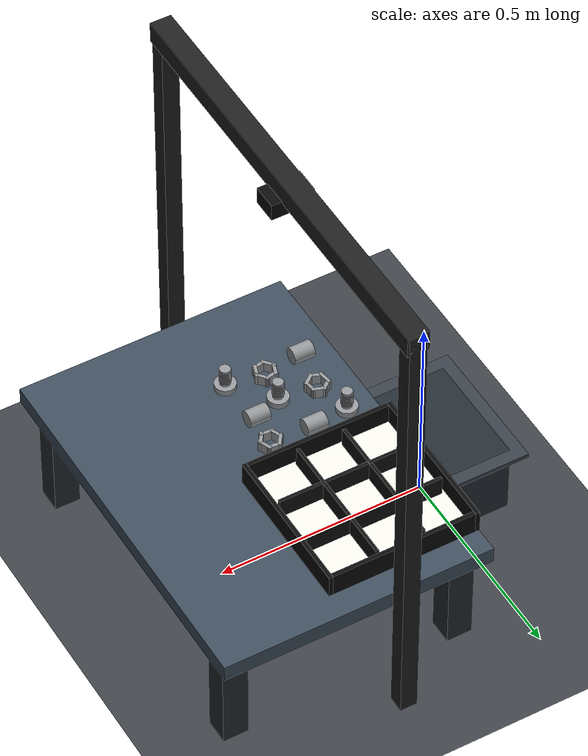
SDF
<?xml version="1.0"?>
<sdf version="1.8">
  <world name="empty">
    <physics name="2ms" type="ignored">
      <max_step_size>0.002</max_step_size>
      <real_time_factor>1.0</real_time_factor>
      <dart>
        <solver>
          <solver_type>pgs</solver_type>
        </solver>
        <collision_detector>ode</collision_detector>
      </dart>
    </physics>
    <plugin filename="ignition-gazebo-physics-system" name="gz::sim::systems::Physics"/>
    <plugin filename="ignition-gazebo-user-commands-system" name="gz::sim::systems::UserCommands"/>
    <plugin filename="ignition-gazebo-scene-broadcaster-system" name="gz::sim::systems::SceneBroadcaster"/>
    <plugin filename="ignition-gazebo-contact-system" name="gz::sim::systems::Contact"/>
    <plugin filename="ignition-gazebo-sensors-system" name="gz::sim::systems::Sensors">
      <render_engine>ogre</render_engine>
    </plugin>
    <scene>
      <ambient>0.42 0.42 0.42 1</ambient>
      <background>0.08 0.10 0.12 1</background>
      <shadows>false</shadows>
    </scene>
    <light type="directional" name="sun">
      <cast_shadows>true</cast_shadows>
      <pose>0 0 10 0 0 0</pose>
      <diffuse>0.75 0.75 0.75 1</diffuse>
      <specular>0.20 0.20 0.20 1</specular>
      <direction>-0.4 0.2 -0.9</direction>
    </light>
    <light type="point" name="work_light">
      <pose>0.45 0 1.31 0 0 0</pose>
      <cast_shadows>true</cast_shadows>
      <diffuse>0.85 0.85 0.82 1</diffuse>
      <specular>0.45 0.45 0.45 1</specular>
      <attenuation>
        <range>4.0</range>
        <constant>0.5</constant>
        <linear>0.1</linear>
        <quadratic>0.02</quadratic>
      </attenuation>
    </light>
    <model name="ground_plane">
      <static>true</static>
      <link name="link">
        <collision name="collision">
          <geometry>
            <plane>
              <normal>0 0 1</normal>
              <size>6 6</size>
            </plane>
          </geometry>
        </collision>
        <visual name="visual">
          <geometry>
            <plane>
              <normal>0 0 1</normal>
              <size>6 6</size>
            </plane>
          </geometry>
          <material>
            <ambient>0.20 0.22 0.24 1</ambient>
            <diffuse>0.24 0.26 0.28 1</diffuse>
          </material>
        </visual>
      </link>
    </model>
    <!-- Robot, workbench, and RGB-D rig deliberately match industrial_pgs.sdf. -->
    <include>
      <uri>model://sensoragent_robot_base_frame</uri>
      <pose>0 0 0 0 0 0</pose>
    </include>
    <model name="sorting_workbench">
      <static>true</static><pose>0.42 0 0 0 0 0</pose><link name="workbench">
        <collision name="top_collision"><pose>0 0 0.28 0 0 0</pose><geometry><box><size>0.65 0.90 0.04</size></box></geometry><surface><friction><ode><mu>20</mu><mu2>20</mu2></ode></friction></surface></collision>
        <visual name="top_visual"><pose>0 0 0.28 0 0 0</pose><geometry><box><size>0.65 0.90 0.04</size></box></geometry><material><ambient>0.18 0.22 0.26 1</ambient><diffuse>0.24 0.30 0.36 1</diffuse><specular>0.35 0.35 0.35 1</specular></material></visual>
        <collision name="leg_1"><pose>-0.275 -0.375 0.13 0 0 0</pose><geometry><box><size>0.06 0.06 0.26</size></box></geometry></collision>
        <collision name="leg_2"><pose>-0.275 0.375 0.13 0 0 0</pose><geometry><box><size>0.06 0.06 0.26</size></box></geometry></collision>
        <collision name="leg_3"><pose>0.275 -0.375 0.13 0 0 0</pose><geometry><box><size>0.06 0.06 0.26</size></box></geometry></collision>
        <collision name="leg_4"><pose>0.275 0.375 0.13 0 0 0</pose><geometry><box><size>0.06 0.06 0.26</size></box></geometry></collision>
        <visual name="leg_1"><pose>-0.275 -0.375 0.13 0 0 0</pose><geometry><box><size>0.06 0.06 0.26</size></box></geometry><material><diffuse>0.14 0.16 0.18 1</diffuse></material></visual>
        <visual name="leg_2"><pose>-0.275 0.375 0.13 0 0 0</pose><geometry><box><size>0.06 0.06 0.26</size></box></geometry><material><diffuse>0.14 0.16 0.18 1</diffuse></material></visual>
        <visual name="leg_3"><pose>0.275 -0.375 0.13 0 0 0</pose><geometry><box><size>0.06 0.06 0.26</size></box></geometry><material><diffuse>0.14 0.16 0.18 1</diffuse></material></visual>
        <visual name="leg_4"><pose>0.275 0.375 0.13 0 0 0</pose><geometry><box><size>0.06 0.06 0.26</size></box></geometry><material><diffuse>0.14 0.16 0.18 1</diffuse></material></visual>
      </link>
    </model>
    <include>
      <uri>model://sensoragent_rgbd_rig</uri>
    </include>
    <!-- A 3x3 destination tray with 105 mm clear cells for the Robotiq gripper. -->
    <model name="sorting_bin_3x3">
      <static>true</static>
      <pose>0.28 0.21 0.30 0 0 0</pose>
      <link name="bin">
        <collision name="bottom">
          <pose>0 0 0.005 0 0 0</pose>
          <geometry>
            <box>
              <size>0.351 0.351 0.01</size>
            </box>
          </geometry>
        </collision>
        <visual name="bottom">
          <pose>0 0 0.005 0 0 0</pose>
          <geometry>
            <box>
              <size>0.351 0.351 0.01</size>
            </box>
          </geometry>
          <material>
            <ambient>0.80 0.80 0.78 1</ambient>
            <diffuse>0.94 0.94 0.91 1</diffuse>
            <specular>0.10 0.10 0.10 1</specular>
          </material>
        </visual>
        <collision name="wall_x_pos">
          <pose>0.1705 0 0.0325 0 0 0</pose>
          <geometry>
            <box>
              <size>0.01 0.351 0.055</size>
            </box>
          </geometry>
        </collision>
        <collision name="wall_x_neg">
          <pose>-0.1705 0 0.0325 0 0 0</pose>
          <geometry>
            <box>
              <size>0.01 0.351 0.055</size>
            </box>
          </geometry>
        </collision>
        <collision name="wall_y_pos">
          <pose>0 0.1705 0.0325 0 0 0</pose>
          <geometry>
            <box>
              <size>0.331 0.01 0.055</size>
            </box>
          </geometry>
        </collision>
        <collision name="wall_y_neg">
          <pose>0 -0.1705 0.0325 0 0 0</pose>
          <geometry>
            <box>
              <size>0.331 0.01 0.055</size>
            </box>
          </geometry>
        </collision>
        <visual name="wall_x_pos">
          <pose>0.178 0 0.0325 0 0 0</pose>
          <geometry>
            <box>
              <size>0.01 0.366 0.055</size>
            </box>
          </geometry>
          <material>
            <diffuse>0.04 0.04 0.04 1</diffuse>
            <specular>0.20 0.20 0.20 1</specular>
          </material>
        </visual>
        <visual name="wall_x_neg">
          <pose>-0.178 0 0.0325 0 0 0</pose>
          <geometry>
            <box>
              <size>0.01 0.366 0.055</size>
            </box>
          </geometry>
          <material>
            <diffuse>0.04 0.04 0.04 1</diffuse>
            <specular>0.20 0.20 0.20 1</specular>
          </material>
        </visual>
        <visual name="wall_y_pos">
          <pose>0 0.178 0.0325 0 0 0</pose>
          <geometry>
            <box>
              <size>0.346 0.01 0.055</size>
            </box>
          </geometry>
          <material>
            <diffuse>0.04 0.04 0.04 1</diffuse>
            <specular>0.20 0.20 0.20 1</specular>
          </material>
        </visual>
        <visual name="wall_y_neg">
          <pose>0 -0.178 0.0325 0 0 0</pose>
          <geometry>
            <box>
              <size>0.346 0.01 0.055</size>
            </box>
          </geometry>
          <material>
            <diffuse>0.04 0.04 0.04 1</diffuse>
            <specular>0.20 0.20 0.20 1</specular>
          </material>
        </visual>
        <collision name="divider_x_left">
          <pose>-0.0565 0 0.0325 0 0 0</pose>
          <geometry>
            <box>
              <size>0.008 0.331 0.050</size>
            </box>
          </geometry>
        </collision>
        <collision name="divider_x_right">
          <pose>0.0565 0 0.0325 0 0 0</pose>
          <geometry>
            <box>
              <size>0.008 0.331 0.050</size>
            </box>
          </geometry>
        </collision>
        <collision name="divider_y_front">
          <pose>0 -0.0565 0.0325 0 0 0</pose>
          <geometry>
            <box>
              <size>0.331 0.008 0.050</size>
            </box>
          </geometry>
        </collision>
        <collision name="divider_y_back">
          <pose>0 0.0565 0.0325 0 0 0</pose>
          <geometry>
            <box>
              <size>0.331 0.008 0.050</size>
            </box>
          </geometry>
        </collision>
        <visual name="divider_x_left">
          <pose>-0.0565 0 0.0325 0 0 0</pose>
          <geometry>
            <box>
              <size>0.008 0.331 0.050</size>
            </box>
          </geometry>
          <material>
            <diffuse>0.06 0.06 0.06 1</diffuse>
          </material>
        </visual>
        <visual name="divider_x_right">
          <pose>0.0565 0 0.0325 0 0 0</pose>
          <geometry>
            <box>
              <size>0.008 0.331 0.050</size>
            </box>
          </geometry>
          <material>
            <diffuse>0.06 0.06 0.06 1</diffuse>
          </material>
        </visual>
        <visual name="divider_y_front">
          <pose>0 -0.0565 0.0325 0 0 0</pose>
          <geometry>
            <box>
              <size>0.331 0.008 0.050</size>
            </box>
          </geometry>
          <material>
            <diffuse>0.06 0.06 0.06 1</diffuse>
          </material>
        </visual>
        <visual name="divider_y_back">
          <pose>0 0.0565 0.0325 0 0 0</pose>
          <geometry>
            <box>
              <size>0.331 0.008 0.050</size>
            </box>
          </geometry>
          <material>
            <diffuse>0.06 0.06 0.06 1</diffuse>
          </material>
        </visual>
      </link>
    </model>
    <model name="metal_roller_01">
      <pose>0.1725 -0.225 0.320 0 1.570796 0</pose>
      <link name="part">
        <inertial>
          <mass>0.20</mass>
          <inertia>
            <ixx>0.0001017</ixx>
            <iyy>0.0001017</iyy>
            <izz>0.0000400</izz>
          </inertia>
        </inertial>
        <collision name="collision">
          <geometry>
            <cylinder>
              <radius>0.020</radius>
              <length>0.050</length>
            </cylinder>
          </geometry>
          <surface>
            <friction>
              <ode>
                <mu>8</mu>
                <mu2>8</mu2>
              </ode>
            </friction>
          </surface>
        </collision>
        <visual name="visual">
          <geometry>
            <cylinder>
              <radius>0.020</radius>
              <length>0.050</length>
            </cylinder>
          </geometry>
          <material>
            <ambient>0.42 0.43 0.44 1</ambient>
            <diffuse>0.58 0.59 0.60 1</diffuse>
            <specular>0.35 0.35 0.35 1</specular>
          </material>
        </visual>
      </link>
    </model>
    <model name="metal_hex_nut_01">
      <pose>0.2675 -0.215 0.3125 0 0 -0.350000</pose>
      <link name="part">
        <inertial>
          <mass>0.18</mass>
          <inertia>
            <ixx>0.0000564</ixx>
            <iyy>0.0000564</iyy>
            <izz>0.0000940</izz>
          </inertia>
        </inertial>
        <collision name="side_0"><pose>0.0205 0 0 0 0 1.570796</pose><geometry><box><size>0.034 0.008 0.025</size></box></geometry></collision>
        <collision name="side_1"><pose>0.01025 0.01775 0 0 0 2.617994</pose><geometry><box><size>0.034 0.008 0.025</size></box></geometry></collision>
        <collision name="side_2"><pose>-0.01025 0.01775 0 0 0 3.665191</pose><geometry><box><size>0.034 0.008 0.025</size></box></geometry></collision>
        <collision name="side_3"><pose>-0.0205 0 0 0 0 4.712389</pose><geometry><box><size>0.034 0.008 0.025</size></box></geometry></collision>
        <collision name="side_4"><pose>-0.01025 -0.01775 0 0 0 5.759587</pose><geometry><box><size>0.034 0.008 0.025</size></box></geometry></collision>
        <collision name="side_5"><pose>0.01025 -0.01775 0 0 0 0.523599</pose><geometry><box><size>0.034 0.008 0.025</size></box></geometry></collision>
        <visual name="side_0"><pose>0.0205 0 0 0 0 1.570796</pose><geometry><box><size>0.034 0.008 0.025</size></box></geometry><material><ambient>0.42 0.43 0.44 1</ambient><diffuse>0.58 0.59 0.60 1</diffuse><specular>0.35 0.35 0.35 1</specular></material></visual>
        <visual name="side_1"><pose>0.01025 0.01775 0 0 0 2.617994</pose><geometry><box><size>0.034 0.008 0.025</size></box></geometry><material><ambient>0.42 0.43 0.44 1</ambient><diffuse>0.58 0.59 0.60 1</diffuse><specular>0.35 0.35 0.35 1</specular></material></visual>
        <visual name="side_2"><pose>-0.01025 0.01775 0 0 0 3.665191</pose><geometry><box><size>0.034 0.008 0.025</size></box></geometry><material><ambient>0.42 0.43 0.44 1</ambient><diffuse>0.58 0.59 0.60 1</diffuse><specular>0.35 0.35 0.35 1</specular></material></visual>
        <visual name="side_3"><pose>-0.0205 0 0 0 0 4.712389</pose><geometry><box><size>0.034 0.008 0.025</size></box></geometry><material><ambient>0.42 0.43 0.44 1</ambient><diffuse>0.58 0.59 0.60 1</diffuse><specular>0.35 0.35 0.35 1</specular></material></visual>
        <visual name="side_4"><pose>-0.01025 -0.01775 0 0 0 5.759587</pose><geometry><box><size>0.034 0.008 0.025</size></box></geometry><material><ambient>0.42 0.43 0.44 1</ambient><diffuse>0.58 0.59 0.60 1</diffuse><specular>0.35 0.35 0.35 1</specular></material></visual>
        <visual name="side_5"><pose>0.01025 -0.01775 0 0 0 0.523599</pose><geometry><box><size>0.034 0.008 0.025</size></box></geometry><material><ambient>0.42 0.43 0.44 1</ambient><diffuse>0.58 0.59 0.60 1</diffuse><specular>0.35 0.35 0.35 1</specular></material></visual>
      </link>
    </model>
    <model name="metal_short_bolt_01">
      <pose>0.3575 -0.232 0.3325 3.141593 0 -0.250000</pose>
      <link name="part">
        <inertial>
          <mass>0.20</mass>
          <inertia>
            <ixx>0.0001162</ixx>
            <iyy>0.0001162</iyy>
            <izz>0.0000625</izz>
          </inertia>
        </inertial>
        <collision name="shaft">
          <pose>0 0 -0.005 0 0 0</pose>
          <geometry>
            <cylinder>
              <radius>0.0125</radius>
              <length>0.045</length>
            </cylinder>
          </geometry>
        </collision>
        <collision name="head">
          <pose>0 0 0.025 0 0 0</pose>
          <geometry>
            <cylinder>
              <radius>0.025</radius>
              <length>0.015</length>
            </cylinder>
          </geometry>
        </collision>
        <visual name="shaft">
          <pose>0 0 -0.005 0 0 0</pose>
          <geometry>
            <cylinder>
              <radius>0.0125</radius>
              <length>0.045</length>
            </cylinder>
          </geometry>
          <material>
            <ambient>0.42 0.43 0.44 1</ambient>
            <diffuse>0.58 0.59 0.60 1</diffuse>
            <specular>0.35 0.35 0.35 1</specular>
          </material>
        </visual>
        <visual name="thread_0"><pose>0 0 -0.022 0 0 0</pose><geometry><cylinder><radius>0.014</radius><length>0.002</length></cylinder></geometry><material><diffuse>0.58 0.59 0.60 1</diffuse></material></visual>
        <visual name="thread_1"><pose>0 0 -0.017 0 0 0</pose><geometry><cylinder><radius>0.014</radius><length>0.002</length></cylinder></geometry><material><diffuse>0.58 0.59 0.60 1</diffuse></material></visual>
        <visual name="thread_2"><pose>0 0 -0.012 0 0 0</pose><geometry><cylinder><radius>0.014</radius><length>0.002</length></cylinder></geometry><material><diffuse>0.58 0.59 0.60 1</diffuse></material></visual>
        <visual name="thread_3"><pose>0 0 -0.007 0 0 0</pose><geometry><cylinder><radius>0.014</radius><length>0.002</length></cylinder></geometry><material><diffuse>0.58 0.59 0.60 1</diffuse></material></visual>
        <visual name="thread_4"><pose>0 0 -0.002 0 0 0</pose><geometry><cylinder><radius>0.014</radius><length>0.002</length></cylinder></geometry><material><diffuse>0.58 0.59 0.60 1</diffuse></material></visual>
        <visual name="thread_5"><pose>0 0 0.003 0 0 0</pose><geometry><cylinder><radius>0.014</radius><length>0.002</length></cylinder></geometry><material><diffuse>0.58 0.59 0.60 1</diffuse></material></visual>
        <visual name="thread_6"><pose>0 0 0.008 0 0 0</pose><geometry><cylinder><radius>0.014</radius><length>0.002</length></cylinder></geometry><material><diffuse>0.58 0.59 0.60 1</diffuse></material></visual>
        <visual name="head">
          <pose>0 0 0.025 0 0 0</pose>
          <geometry>
            <cylinder>
              <radius>0.025</radius>
              <length>0.015</length>
            </cylinder>
          </geometry>
          <material>
            <ambient>0.42 0.43 0.44 1</ambient>
            <diffuse>0.58 0.59 0.60 1</diffuse>
            <specular>0.35 0.35 0.35 1</specular>
          </material>
        </visual>
      </link>
    </model>
    <include>
      <uri>model://sensoragent_part_roller</uri>
      <name>metal_roller_02</name>
      <pose>0.3475 -0.112 0.320 0 1.570796 0</pose>
    </include>
    <include>
      <uri>model://sensoragent_part_roller</uri>
      <name>metal_roller_03</name>
      <pose>0.2525 -0.030 0.320 0 1.570796 0</pose>
    </include>
    <include>
      <uri>model://sensoragent_part_hex_nut</uri>
      <name>metal_hex_nut_02</name>
      <pose>0.1875 -0.128 0.3125 0 0 0.150000</pose>
    </include>
    <include>
      <uri>model://sensoragent_part_hex_nut</uri>
      <name>metal_hex_nut_03</name>
      <pose>0.3575 -0.035 0.3125 0 0 0.420000</pose>
    </include>
    <include>
      <uri>model://sensoragent_part_short_bolt</uri>
      <name>metal_short_bolt_02</name>
      <pose>0.2775 -0.142 0.3325 3.141593 0 0.200000</pose>
    </include>
    <include>
      <uri>model://sensoragent_part_short_bolt</uri>
      <name>metal_short_bolt_03</name>
      <pose>0.1625 -0.045 0.3325 3.141593 0 -0.400000</pose>
    </include>
  </world>
</sdf>

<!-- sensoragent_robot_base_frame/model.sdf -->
<sdf version="1.8">
  <model name="sensoragent_robot_base_frame">
    <static>true</static>
    <link name="pedestal">
      <collision name="body_collision">
        <pose>0 0 0.09 0 0 0</pose>
        <geometry><box><size>0.28 0.28 0.18</size></box></geometry>
      </collision>
      <visual name="body_visual">
        <pose>0 0 0.09 0 0 0</pose>
        <geometry><box><size>0.28 0.28 0.18</size></box></geometry>
        <material>
          <ambient>0.10 0.12 0.14 1</ambient>
          <diffuse>0.14 0.17 0.20 1</diffuse>
          <specular>0.30 0.30 0.30 1</specular>
        </material>
      </visual>
      <visual name="top_plate_visual">
        <pose>0 0 0.175 0 0 0</pose>
        <geometry><box><size>0.34 0.34 0.01</size></box></geometry>
        <material>
          <ambient>0.16 0.18 0.20 1</ambient>
          <diffuse>0.22 0.25 0.28 1</diffuse>
          <specular>0.45 0.45 0.45 1</specular>
        </material>
      </visual>
    </link>
  </model>
</sdf>

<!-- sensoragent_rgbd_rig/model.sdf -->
<sdf version="1.8">
  <model name="sensoragent_rgbd_rig">
    <static>true</static>
    <link name="rig">
      <visual name="left_post">
        <pose>0.34 0.50 0.57 0 0 0</pose>
        <geometry><box><size>0.04 0.04 1.14</size></box></geometry>
        <material><diffuse>0.12 0.12 0.12 1</diffuse></material>
      </visual>
      <collision name="left_post_collision">
        <pose>0.34 0.50 0.57 0 0 0</pose>
        <geometry><box><size>0.04 0.04 1.14</size></box></geometry>
      </collision>
      <visual name="right_post">
        <pose>0.34 -0.50 0.57 0 0 0</pose>
        <geometry><box><size>0.04 0.04 1.14</size></box></geometry>
        <material><diffuse>0.12 0.12 0.12 1</diffuse></material>
      </visual>
      <collision name="right_post_collision">
        <pose>0.34 -0.50 0.57 0 0 0</pose>
        <geometry><box><size>0.04 0.04 1.14</size></box></geometry>
      </collision>
      <visual name="crossbar">
        <pose>0.34 0 1.12 0 0 0</pose>
        <geometry><box><size>0.05 1.04 0.05</size></box></geometry>
        <material><diffuse>0.12 0.12 0.12 1</diffuse></material>
      </visual>
      <collision name="crossbar_collision">
        <pose>0.34 0 1.12 0 0 0</pose>
        <geometry><box><size>0.05 1.04 0.05</size></box></geometry>
      </collision>
      <visual name="camera_body">
        <pose>0.34 0 1.08 0 0 0</pose>
        <geometry><box><size>0.10 0.06 0.04</size></box></geometry>
        <material><diffuse>0.04 0.04 0.04 1</diffuse></material>
      </visual>

      <sensor name="rgb_camera" type="camera">
        <pose>0.34 0 1.06 0 1.570796 0</pose>
        <always_on>true</always_on>
        <update_rate>10</update_rate>
        <topic>/industrial_camera/image</topic>
        <camera>
          <camera_info_topic>/industrial_camera/camera_info</camera_info_topic>
          <horizontal_fov>1.047</horizontal_fov>
          <image>
            <width>424</width>
            <height>240</height>
            <format>R8G8B8</format>
          </image>
          <clip>
            <near>0.10</near>
            <far>3.0</far>
          </clip>
        </camera>
      </sensor>

      <sensor name="depth_camera" type="depth_camera">
        <pose>0.34 0 1.06 0 1.570796 0</pose>
        <always_on>true</always_on>
        <update_rate>10</update_rate>
        <topic>/industrial_camera/depth_image</topic>
        <camera>
          <camera_info_topic>/industrial_camera/depth_camera_info</camera_info_topic>
          <horizontal_fov>1.047</horizontal_fov>
          <image>
            <width>424</width>
            <height>240</height>
          </image>
          <clip>
            <near>0.10</near>
            <far>3.0</far>
          </clip>
        </camera>
      </sensor>
    </link>
  </model>
</sdf>

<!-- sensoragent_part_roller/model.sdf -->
<sdf version="1.8">
  <model name="sensoragent_part_roller">
    <link name="part">
      <inertial>
        <mass>0.20</mass>
        <inertia>
          <ixx>0.0001017</ixx>
          <iyy>0.0001017</iyy>
          <izz>0.0000400</izz>
        </inertia>
      </inertial>
      <collision name="collision">
        <geometry><cylinder><radius>0.020</radius><length>0.050</length></cylinder></geometry>
        <surface>
          <friction>
            <ode>
              <mu>8.0</mu>
              <mu2>8.0</mu2>
            </ode>
          </friction>
          <contact>
            <ode>
              <kp>1e+5</kp>
              <kd>1</kd>
              <soft_cfm>0</soft_cfm>
              <soft_erp>0.2</soft_erp>
              <minDepth>0.002</minDepth>
              <maxVel>0</maxVel>
            </ode>
          </contact>
        </surface>
      </collision>
      <visual name="visual">
        <geometry><cylinder><radius>0.020</radius><length>0.050</length></cylinder></geometry>
        <material>
          <ambient>0.42 0.43 0.44 1</ambient>
          <diffuse>0.58 0.59 0.60 1</diffuse>
          <specular>0.35 0.35 0.35 1</specular>
        </material>
      </visual>
    </link>
  </model>
</sdf>

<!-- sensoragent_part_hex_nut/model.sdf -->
<sdf version="1.8">
  <model name="sensoragent_part_hex_nut">
    <link name="part">
      <inertial>
        <mass>0.18</mass>
        <inertia>
          <ixx>0.0000564</ixx>
          <iyy>0.0000564</iyy>
          <izz>0.0000940</izz>
        </inertia>
      </inertial>

      <collision name="side_0_collision">
        <pose>0.0205 0 0 0 0 1.570796</pose>
        <geometry><box><size>0.034 0.008 0.025</size></box></geometry>
      </collision>
      <collision name="side_1_collision">
        <pose>0.01025 0.01775 0 0 0 2.617994</pose>
        <geometry><box><size>0.034 0.008 0.025</size></box></geometry>
      </collision>
      <collision name="side_2_collision">
        <pose>-0.01025 0.01775 0 0 0 3.665191</pose>
        <geometry><box><size>0.034 0.008 0.025</size></box></geometry>
      </collision>
      <collision name="side_3_collision">
        <pose>-0.0205 0 0 0 0 4.712389</pose>
        <geometry><box><size>0.034 0.008 0.025</size></box></geometry>
      </collision>
      <collision name="side_4_collision">
        <pose>-0.01025 -0.01775 0 0 0 5.759587</pose>
        <geometry><box><size>0.034 0.008 0.025</size></box></geometry>
      </collision>
      <collision name="side_5_collision">
        <pose>0.01025 -0.01775 0 0 0 0.523599</pose>
        <geometry><box><size>0.034 0.008 0.025</size></box></geometry>
      </collision>

      <visual name="side_0_visual">
        <pose>0.0205 0 0 0 0 1.570796</pose>
        <geometry><box><size>0.034 0.008 0.025</size></box></geometry>
        <material><ambient>0.42 0.43 0.44 1</ambient><diffuse>0.58 0.59 0.60 1</diffuse><specular>0.35 0.35 0.35 1</specular></material>
      </visual>
      <visual name="side_1_visual">
        <pose>0.01025 0.01775 0 0 0 2.617994</pose>
        <geometry><box><size>0.034 0.008 0.025</size></box></geometry>
        <material><ambient>0.42 0.43 0.44 1</ambient><diffuse>0.58 0.59 0.60 1</diffuse><specular>0.35 0.35 0.35 1</specular></material>
      </visual>
      <visual name="side_2_visual">
        <pose>-0.01025 0.01775 0 0 0 3.665191</pose>
        <geometry><box><size>0.034 0.008 0.025</size></box></geometry>
        <material><ambient>0.42 0.43 0.44 1</ambient><diffuse>0.58 0.59 0.60 1</diffuse><specular>0.35 0.35 0.35 1</specular></material>
      </visual>
      <visual name="side_3_visual">
        <pose>-0.0205 0 0 0 0 4.712389</pose>
        <geometry><box><size>0.034 0.008 0.025</size></box></geometry>
        <material><ambient>0.42 0.43 0.44 1</ambient><diffuse>0.58 0.59 0.60 1</diffuse><specular>0.35 0.35 0.35 1</specular></material>
      </visual>
      <visual name="side_4_visual">
        <pose>-0.01025 -0.01775 0 0 0 5.759587</pose>
        <geometry><box><size>0.034 0.008 0.025</size></box></geometry>
        <material><ambient>0.42 0.43 0.44 1</ambient><diffuse>0.58 0.59 0.60 1</diffuse><specular>0.35 0.35 0.35 1</specular></material>
      </visual>
      <visual name="side_5_visual">
        <pose>0.01025 -0.01775 0 0 0 0.523599</pose>
        <geometry><box><size>0.034 0.008 0.025</size></box></geometry>
        <material><ambient>0.42 0.43 0.44 1</ambient><diffuse>0.58 0.59 0.60 1</diffuse><specular>0.35 0.35 0.35 1</specular></material>
      </visual>
    </link>
  </model>
</sdf>

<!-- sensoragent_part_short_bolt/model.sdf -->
<sdf version="1.8">
  <model name="sensoragent_part_short_bolt">
    <link name="part">
      <inertial>
        <mass>0.20</mass>
        <inertia>
          <ixx>0.0001162</ixx>
          <iyy>0.0001162</iyy>
          <izz>0.0000625</izz>
        </inertia>
      </inertial>
      <collision name="shaft_collision">
        <pose>0 0 -0.005 0 0 0</pose>
        <geometry><cylinder><radius>0.0125</radius><length>0.045</length></cylinder></geometry>
      </collision>
      <collision name="head_collision">
        <pose>0 0 0.025 0 0 0</pose>
        <geometry><cylinder><radius>0.025</radius><length>0.015</length></cylinder></geometry>
      </collision>
      <visual name="shaft_visual">
        <pose>0 0 -0.005 0 0 0</pose>
        <geometry><cylinder><radius>0.0125</radius><length>0.045</length></cylinder></geometry>
        <material><ambient>0.42 0.43 0.44 1</ambient><diffuse>0.58 0.59 0.60 1</diffuse><specular>0.35 0.35 0.35 1</specular></material>
      </visual>
      <visual name="thread_0"><pose>0 0 -0.022 0 0 0</pose><geometry><cylinder><radius>0.014</radius><length>0.002</length></cylinder></geometry><material><diffuse>0.58 0.59 0.60 1</diffuse></material></visual>
      <visual name="thread_1"><pose>0 0 -0.017 0 0 0</pose><geometry><cylinder><radius>0.014</radius><length>0.002</length></cylinder></geometry><material><diffuse>0.58 0.59 0.60 1</diffuse></material></visual>
      <visual name="thread_2"><pose>0 0 -0.012 0 0 0</pose><geometry><cylinder><radius>0.014</radius><length>0.002</length></cylinder></geometry><material><diffuse>0.58 0.59 0.60 1</diffuse></material></visual>
      <visual name="thread_3"><pose>0 0 -0.007 0 0 0</pose><geometry><cylinder><radius>0.014</radius><length>0.002</length></cylinder></geometry><material><diffuse>0.58 0.59 0.60 1</diffuse></material></visual>
      <visual name="thread_4"><pose>0 0 -0.002 0 0 0</pose><geometry><cylinder><radius>0.014</radius><length>0.002</length></cylinder></geometry><material><diffuse>0.58 0.59 0.60 1</diffuse></material></visual>
      <visual name="thread_5"><pose>0 0 0.003 0 0 0</pose><geometry><cylinder><radius>0.014</radius><length>0.002</length></cylinder></geometry><material><diffuse>0.58 0.59 0.60 1</diffuse></material></visual>
      <visual name="thread_6"><pose>0 0 0.008 0 0 0</pose><geometry><cylinder><radius>0.014</radius><length>0.002</length></cylinder></geometry><material><diffuse>0.58 0.59 0.60 1</diffuse></material></visual>
      <visual name="head_visual">
        <pose>0 0 0.025 0 0 0</pose>
        <geometry><cylinder><radius>0.025</radius><length>0.015</length></cylinder></geometry>
        <material><ambient>0.42 0.43 0.44 1</ambient><diffuse>0.58 0.59 0.60 1</diffuse><specular>0.35 0.35 0.35 1</specular></material>
      </visual>
    </link>
  </model>
</sdf>
